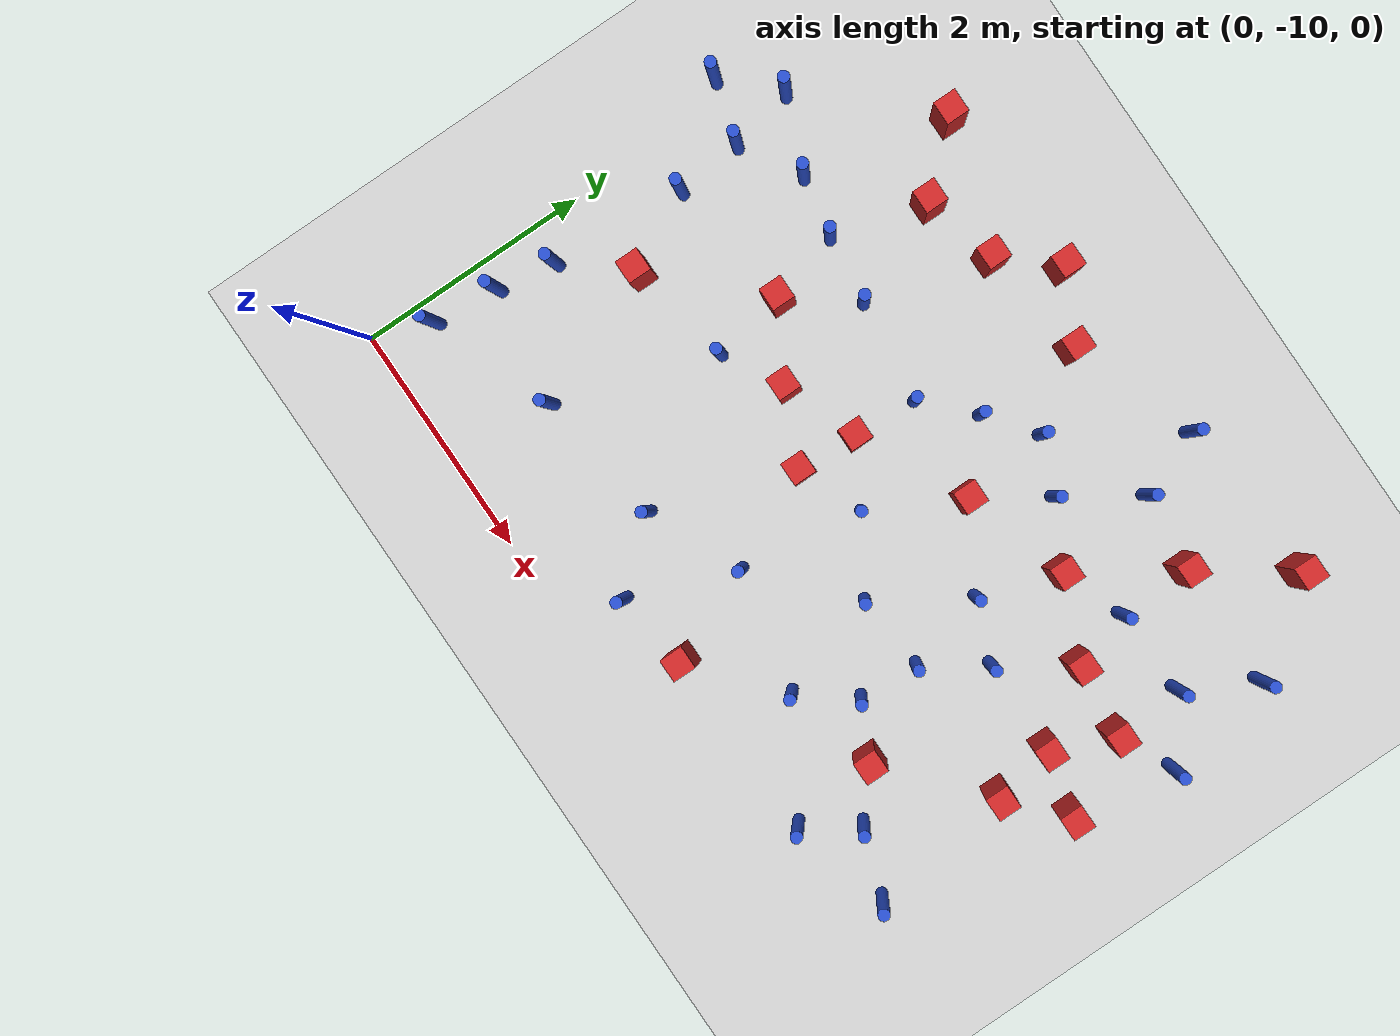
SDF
<sdf version="1.6">
 <world name="default">
  <model name="ground_plane">
   <static>1</static>
   <link name="link">
    <collision name="collision">
     <geometry><plane><normal>0 0 1</normal><size>100 100</size></plane></geometry>
     <surface><friction><ode><mu>100</mu><mu2>50</mu2></ode></friction></surface>
    </collision>
    <visual name="visual">
     <cast_shadows>0</cast_shadows>
     <geometry><plane><normal>0 0 1</normal><size>100 100</size></plane></geometry>
     <material>
      <ambient>1.0 1.0 1.0 1.0</ambient>
      <diffuse>0.8 0.8 0.8 1.0</diffuse>
      <specular>0.01 0.01 0.01 1.000000</specular>
     </material>
    </visual>
   </link>
  </model>
  <model name="square_post_obstacle1">
   <static>true</static>
   <pose>5.8524350811 -7.88041498456 1.91545236811e-07 -7.35059704564e-06 1.12565212e-07 2.39332434364e-05</pose>
   <link name="link">
    <pose>0 0 0.25 0 -0 0</pose>
    <inertial>
     <mass>100</mass>
     <inertia>
      <ixx>0.166667</ixx>
      <ixy>0</ixy>
      <ixz>0</ixz>
      <iyy>0.166667</iyy>
      <iyz>0</iyz>
      <izz>0.166667</izz>
     </inertia>
    </inertial>
    <collision name="collision"><geometry><box><size>.2 .2 .5</size></box></geometry></collision>
    <visual name="visual">
     <geometry><box><size>.2 .2 .5</size></box></geometry>
     <material>
      <script><name>Gazebo/Red</name><uri>file://media/materials/scripts/gazebo.material</uri></script>
     </material>
    </visual>
   </link>
  </model>
  <model name="square_post_obstacle3">
   <static>true</static>
   <pose>1.17555070955 -5.18279903522 1.91545236811e-07 -7.35059704564e-06 1.12565212e-07 2.39332434364e-05</pose>
   <link name="link">
    <pose>0 0 0.25 0 -0 0</pose>
    <inertial>
     <mass>100</mass>
     <inertia>
      <ixx>0.166667</ixx>
      <ixy>0</ixy>
      <ixz>0</ixz>
      <iyy>0.166667</iyy>
      <iyz>0</iyz>
      <izz>0.166667</izz>
     </inertia>
    </inertial>
    <collision name="collision"><geometry><box><size>.2 .2 .5</size></box></geometry></collision>
    <visual name="visual">
     <geometry><box><size>.2 .2 .5</size></box></geometry>
     <material>
      <script><name>Gazebo/Red</name><uri>file://media/materials/scripts/gazebo.material</uri></script>
     </material>
    </visual>
   </link>
  </model>
  <model name="square_post_obstacle5">
   <static>true</static>
   <pose>6.30125212651 -7.48989222779 1.91545236811e-07 -7.35059704564e-06 1.12565212e-07 2.39332434364e-05</pose>
   <link name="link">
    <pose>0 0 0.25 0 -0 0</pose>
    <inertial>
     <mass>100</mass>
     <inertia>
      <ixx>0.166667</ixx>
      <ixy>0</ixy>
      <ixz>0</ixz>
      <iyy>0.166667</iyy>
      <iyz>0</iyz>
      <izz>0.166667</izz>
     </inertia>
    </inertial>
    <collision name="collision"><geometry><box><size>.2 .2 .5</size></box></geometry></collision>
    <visual name="visual">
     <geometry><box><size>.2 .2 .5</size></box></geometry>
     <material>
      <script><name>Gazebo/Red</name><uri>file://media/materials/scripts/gazebo.material</uri></script>
     </material>
    </visual>
   </link>
  </model>
  <model name="square_post_obstacle7">
   <static>true</static>
   <pose>2.81523320813 -7.72987050047 1.91545236811e-07 -7.35059704564e-06 1.12565212e-07 2.39332434364e-05</pose>
   <link name="link">
    <pose>0 0 0.25 0 -0 0</pose>
    <inertial>
     <mass>100</mass>
     <inertia>
      <ixx>0.166667</ixx>
      <ixy>0</ixy>
      <ixz>0</ixz>
      <iyy>0.166667</iyy>
      <iyz>0</iyz>
      <izz>0.166667</izz>
     </inertia>
    </inertial>
    <collision name="collision"><geometry><box><size>.2 .2 .5</size></box></geometry></collision>
    <visual name="visual">
     <geometry><box><size>.2 .2 .5</size></box></geometry>
     <material>
      <script><name>Gazebo/Red</name><uri>file://media/materials/scripts/gazebo.material</uri></script>
     </material>
    </visual>
   </link>
  </model>
  <model name="pole_obstacle17">
   <static>true</static>
   <pose>5.14895536789 -9.33212256707 7.38925637345e-09 -8.471706928e-08 1.24976765081e-08 -1.74513093015e-07</pose>
   <link name="link">
    <pose>0 0 0.3 0 -0 0</pose>
    <inertial>
     <mass>1</mass>
     <inertia><ixx>0.145833</ixx><ixy>0</ixy><ixz>0</ixz><iyy>0.145833</iyy><iyz>0</iyz><izz>0.125</izz></inertia>
    </inertial>
    <collision name="collision">
     <geometry><cylinder><radius>0.05</radius><length>.6</length></cylinder></geometry>
    </collision>
    <visual name="visual">
     <geometry><cylinder><radius>0.05</radius><length>.6</length></cylinder></geometry>
     <material>
      <script><name>Gazebo/Blue</name><uri>file://media/materials/scripts/gazebo.material</uri></script>
     </material>
    </visual>
   </link>
  </model>
  <model name="pole_obstacle26">
   <static>true</static>
   <pose>3.67127067409 -5.98958336278 7.38925637345e-09 -8.47170692798e-08 1.24976765033e-08 -1.74513093019e-07</pose>
   <link name="link">
    <pose>0 0 0.3 0 -0 0</pose>
    <inertial>
     <mass>1</mass>
     <inertia><ixx>0.145833</ixx><ixy>0</ixy><ixz>0</ixz><iyy>0.145833</iyy><iyz>0</iyz><izz>0.125</izz></inertia>
    </inertial>
    <collision name="collision">
     <geometry><cylinder><radius>0.05</radius><length>.6</length></cylinder></geometry>
    </collision>
    <visual name="visual">
     <geometry><cylinder><radius>0.05</radius><length>.6</length></cylinder></geometry>
     <material>
      <script><name>Gazebo/Blue</name><uri>file://media/materials/scripts/gazebo.material</uri></script>
     </material>
    </visual>
   </link>
  </model>
  <model name="pole_obstacle27">
   <static>true</static>
   <pose>0.218281617899 -9.46970340837 7.38925637345e-09 -8.47170692797e-08 1.24976764785e-08 -1.74513093032e-07</pose>
   <link name="link">
    <pose>0 0 0.3 0 -0 0</pose>
    <inertial>
     <mass>1</mass>
     <inertia><ixx>0.145833</ixx><ixy>0</ixy><ixz>0</ixz><iyy>0.145833</iyy><iyz>0</iyz><izz>0.125</izz></inertia>
    </inertial>
    <collision name="collision">
     <geometry><cylinder><radius>0.05</radius><length>.6</length></cylinder></geometry>
    </collision>
    <visual name="visual">
     <geometry><cylinder><radius>0.05</radius><length>.6</length></cylinder></geometry>
     <material>
      <script><name>Gazebo/Blue</name><uri>file://media/materials/scripts/gazebo.material</uri></script>
     </material>
    </visual>
   </link>
  </model>
  <model name="pole_obstacle32">
   <static>true</static>
   <pose>0.370580457258 -8.4109793026 7.38925637345e-09 -8.47170692796e-08 1.24976764724e-08 -1.74513093036e-07</pose>
   <link name="link">
    <pose>0 0 0.3 0 -0 0</pose>
    <inertial>
     <mass>1</mass>
     <inertia><ixx>0.145833</ixx><ixy>0</ixy><ixz>0</ixz><iyy>0.145833</iyy><iyz>0</iyz><izz>0.125</izz></inertia>
    </inertial>
    <collision name="collision">
     <geometry><cylinder><radius>0.05</radius><length>.6</length></cylinder></geometry>
    </collision>
    <visual name="visual">
     <geometry><cylinder><radius>0.05</radius><length>.6</length></cylinder></geometry>
     <material>
      <script><name>Gazebo/Blue</name><uri>file://media/materials/scripts/gazebo.material</uri></script>
     </material>
    </visual>
   </link>
  </model>
  <model name="pole_obstacle37">
   <static>true</static>
   <pose>4.25198157795 -8.78195436409 7.38925637345e-09 -8.471706928e-08 1.24976765081e-08 -1.74513093015e-07</pose>
   <link name="link">
    <pose>0 0 0.3 0 -0 0</pose>
    <inertial>
     <mass>1</mass>
     <inertia><ixx>0.145833</ixx><ixy>0</ixy><ixz>0</ixz><iyy>0.145833</iyy><iyz>0</iyz><izz>0.125</izz></inertia>
    </inertial>
    <collision name="collision">
     <geometry><cylinder><radius>0.05</radius><length>.6</length></cylinder></geometry>
    </collision>
    <visual name="visual">
     <geometry><cylinder><radius>0.05</radius><length>.6</length></cylinder></geometry>
     <material>
      <script><name>Gazebo/Blue</name><uri>file://media/materials/scripts/gazebo.material</uri></script>
     </material>
    </visual>
   </link>
  </model>
  <model name="pole_obstacle38">
   <static>true</static>
   <pose>2.00989700809 -6.5613850864 7.38925637345e-09 -8.47170692799e-08 1.24976765014e-08 -1.7451309302e-07</pose>
   <link name="link">
    <pose>0 0 0.3 0 -0 0</pose>
    <inertial>
     <mass>1</mass>
     <inertia><ixx>0.145833</ixx><ixy>0</ixy><ixz>0</ixz><iyy>0.145833</iyy><iyz>0</iyz><izz>0.125</izz></inertia>
    </inertial>
    <collision name="collision">
     <geometry><cylinder><radius>0.05</radius><length>.6</length></cylinder></geometry>
    </collision>
    <visual name="visual">
     <geometry><cylinder><radius>0.05</radius><length>.6</length></cylinder></geometry>
     <material>
      <script><name>Gazebo/Blue</name><uri>file://media/materials/scripts/gazebo.material</uri></script>
     </material>
    </visual>
   </link>
  </model>
  <model name="pole_obstacle40">
   <static>true</static>
   <pose>5.43878654084 -8.90056300066 7.38925637345e-09 -8.471706928e-08 1.24976765081e-08 -1.74513093015e-07</pose>
   <link name="link">
    <pose>0 0 0.3 0 -0 0</pose>
    <inertial>
     <mass>1</mass>
     <inertia><ixx>0.145833</ixx><ixy>0</ixy><ixz>0</ixz><iyy>0.145833</iyy><iyz>0</iyz><izz>0.125</izz></inertia>
    </inertial>
    <collision name="collision">
     <geometry><cylinder><radius>0.05</radius><length>.6</length></cylinder></geometry>
    </collision>
    <visual name="visual">
     <geometry><cylinder><radius>0.05</radius><length>.6</length></cylinder></geometry>
     <material>
      <script><name>Gazebo/Blue</name><uri>file://media/materials/scripts/gazebo.material</uri></script>
     </material>
    </visual>
   </link>
  </model>
  <model name="pole_obstacle41">
   <static>true</static>
   <pose>2.88680595156 -9.46219726965 7.38925637345e-09 -8.47170692793e-08 1.24976764408e-08 -1.74513093041e-07</pose>
   <link name="link">
    <pose>0 0 0.3 0 -0 0</pose>
    <inertial>
     <mass>1</mass>
     <inertia><ixx>0.145833</ixx><ixy>0</ixy><ixz>0</ixz><iyy>0.145833</iyy><iyz>0</iyz><izz>0.125</izz></inertia>
    </inertial>
    <collision name="collision">
     <geometry><cylinder><radius>0.05</radius><length>.6</length></cylinder></geometry>
    </collision>
    <visual name="visual">
     <geometry><cylinder><radius>0.05</radius><length>.6</length></cylinder></geometry>
     <material>
      <script><name>Gazebo/Blue</name><uri>file://media/materials/scripts/gazebo.material</uri></script>
     </material>
    </visual>
   </link>
  </model>
  <model name="pole_obstacle47">
   <static>true</static>
   <pose>4.62525755946 -7.83946265827 7.38925637345e-09 -8.47170692796e-08 1.24976764786e-08 -1.74513093032e-07</pose>
   <link name="link">
    <pose>0 0 0.3 0 -0 0</pose>
    <inertial>
     <mass>1</mass>
     <inertia><ixx>0.145833</ixx><ixy>0</ixy><ixz>0</ixz><iyy>0.145833</iyy><iyz>0</iyz><izz>0.125</izz></inertia>
    </inertial>
    <collision name="collision">
     <geometry><cylinder><radius>0.05</radius><length>.6</length></cylinder></geometry>
    </collision>
    <visual name="visual">
     <geometry><cylinder><radius>0.05</radius><length>.6</length></cylinder></geometry>
     <material>
      <script><name>Gazebo/Blue</name><uri>file://media/materials/scripts/gazebo.material</uri></script>
     </material>
    </visual>
   </link>
  </model>
  <model name="pole_obstacle60">
   <static>true</static>
   <pose>0.460055146686 -7.26032263534 7.38925637345e-09 -8.471706928e-08 1.24976765095e-08 -1.74513093014e-07</pose>
   <link name="link">
    <pose>0 0 0.3 0 -0 0</pose>
    <inertial>
     <mass>1</mass>
     <inertia><ixx>0.145833</ixx><ixy>0</ixy><ixz>0</ixz><iyy>0.145833</iyy><iyz>0</iyz><izz>0.125</izz></inertia>
    </inertial>
    <collision name="collision">
     <geometry><cylinder><radius>0.05</radius><length>.6</length></cylinder></geometry>
    </collision>
    <visual name="visual">
     <geometry><cylinder><radius>0.05</radius><length>.6</length></cylinder></geometry>
     <material>
      <script><name>Gazebo/Blue</name><uri>file://media/materials/scripts/gazebo.material</uri></script>
     </material>
    </visual>
   </link>
  </model>
  <model name="square_post_obstacle62">
   <static>true</static>
   <pose>1.65205220888 -5.70170463473 1.91545236811e-07 -7.35059704564e-06 1.12565212e-07 2.39332434364e-05</pose>
   <link name="link">
    <pose>0 0 0.25 0 -0 0</pose>
    <inertial>
     <mass>100</mass>
     <inertia>
      <ixx>0.166667</ixx>
      <ixy>0</ixy>
      <ixz>0</ixz>
      <iyy>0.166667</iyy>
      <iyz>0</iyz>
      <izz>0.166667</izz>
     </inertia>
    </inertial>
    <collision name="collision"><geometry><box><size>.2 .2 .5</size></box></geometry></collision>
    <visual name="visual">
     <geometry><box><size>.2 .2 .5</size></box></geometry>
     <material>
      <script><name>Gazebo/Red</name><uri>file://media/materials/scripts/gazebo.material</uri></script>
     </material>
    </visual>
   </link>
  </model>
  <model name="pole_obstacle61">
   <static>true</static>
   <pose>3.36711094771 -7.5144441604 7.38925637345e-09 -8.47170692798e-08 1.24976765033e-08 -1.74513093019e-07</pose>
   <link name="link">
    <pose>0 0 0.3 0 -0 0</pose>
    <inertial>
     <mass>1</mass>
     <inertia><ixx>0.145833</ixx><ixy>0</ixy><ixz>0</ixz><iyy>0.145833</iyy><iyz>0</iyz><izz>0.125</izz></inertia>
    </inertial>
    <collision name="collision">
     <geometry><cylinder><radius>0.05</radius><length>.6</length></cylinder></geometry>
    </collision>
    <visual name="visual">
     <geometry><cylinder><radius>0.05</radius><length>.6</length></cylinder></geometry>
     <material>
      <script><name>Gazebo/Blue</name><uri>file://media/materials/scripts/gazebo.material</uri></script>
     </material>
    </visual>
   </link>
  </model>
  <model name="pole_obstacle62">
   <static>true</static>
   <pose>5.94779780442 -6.24223520678 7.38925637345e-09 -8.47170692796e-08 1.24976764786e-08 -1.74513093032e-07</pose>
   <link name="link">
    <pose>0 0 0.3 0 -0 0</pose>
    <inertial>
     <mass>1</mass>
     <inertia><ixx>0.145833</ixx><ixy>0</ixy><ixz>0</ixz><iyy>0.145833</iyy><iyz>0</iyz><izz>0.125</izz></inertia>
    </inertial>
    <collision name="collision">
     <geometry><cylinder><radius>0.05</radius><length>.6</length></cylinder></geometry>
    </collision>
    <visual name="visual">
     <geometry><cylinder><radius>0.05</radius><length>.6</length></cylinder></geometry>
     <material>
      <script><name>Gazebo/Blue</name><uri>file://media/materials/scripts/gazebo.material</uri></script>
     </material>
    </visual>
   </link>
  </model>
  <model name="pole_obstacle66">
   <static>true</static>
   <pose>6.2660378032 -5.65372171169 7.38925637345e-09 -8.47170692796e-08 1.24976764786e-08 -1.74513093032e-07</pose>
   <link name="link">
    <pose>0 0 0.3 0 -0 0</pose>
    <inertial>
     <mass>1</mass>
     <inertia><ixx>0.145833</ixx><ixy>0</ixy><ixz>0</ixz><iyy>0.145833</iyy><iyz>0</iyz><izz>0.125</izz></inertia>
    </inertial>
    <collision name="collision">
     <geometry><cylinder><radius>0.05</radius><length>.6</length></cylinder></geometry>
    </collision>
    <visual name="visual">
     <geometry><cylinder><radius>0.05</radius><length>.6</length></cylinder></geometry>
     <material>
      <script><name>Gazebo/Blue</name><uri>file://media/materials/scripts/gazebo.material</uri></script>
     </material>
    </visual>
   </link>
  </model>
  <model name="square_post_obstacle73">
   <static>true</static>
   <pose>2.66612881722 -5.10111255644 1.91545236811e-07 -7.35059704564e-06 1.12565212e-07 2.39332434364e-05</pose>
   <link name="link">
    <pose>0 0 0.25 0 -0 0</pose>
    <inertial>
     <mass>100</mass>
     <inertia>
      <ixx>0.166667</ixx>
      <ixy>0</ixy>
      <ixz>0</ixz>
      <iyy>0.166667</iyy>
      <iyz>0</iyz>
      <izz>0.166667</izz>
     </inertia>
    </inertial>
    <collision name="collision"><geometry><box><size>.2 .2 .5</size></box></geometry></collision>
    <visual name="visual">
     <geometry><box><size>.2 .2 .5</size></box></geometry>
     <material>
      <script><name>Gazebo/Red</name><uri>file://media/materials/scripts/gazebo.material</uri></script>
     </material>
    </visual>
   </link>
  </model>
  <model name="square_post_obstacle75">
   <static>true</static>
   <pose>3.24001456475 -5.39599290933 1.91545236811e-07 -7.35059704564e-06 1.12565212e-07 2.39332434364e-05</pose>
   <link name="link">
    <pose>0 0 0.25 0 -0 0</pose>
    <inertial>
     <mass>100</mass>
     <inertia>
      <ixx>0.166667</ixx>
      <ixy>0</ixy>
      <ixz>0</ixz>
      <iyy>0.166667</iyy>
      <iyz>0</iyz>
      <izz>0.166667</izz>
     </inertia>
    </inertial>
    <collision name="collision"><geometry><box><size>.2 .2 .5</size></box></geometry></collision>
    <visual name="visual">
     <geometry><box><size>.2 .2 .5</size></box></geometry>
     <material>
      <script><name>Gazebo/Red</name><uri>file://media/materials/scripts/gazebo.material</uri></script>
     </material>
    </visual>
   </link>
  </model>
  <model name="pole_obstacle70">
   <static>true</static>
   <pose>3.97271697191 -7.89106494173 7.38925637345e-09 -8.47170692798e-08 1.24976764915e-08 -1.74513093026e-07</pose>
   <link name="link">
    <pose>0 0 0.3 0 -0 0</pose>
    <inertial>
     <mass>1</mass>
     <inertia><ixx>0.145833</ixx><ixy>0</ixy><ixz>0</ixz><iyy>0.145833</iyy><iyz>0</iyz><izz>0.125</izz></inertia>
    </inertial>
    <collision name="collision">
     <geometry><cylinder><radius>0.05</radius><length>.6</length></cylinder></geometry>
    </collision>
    <visual name="visual">
     <geometry><cylinder><radius>0.05</radius><length>.6</length></cylinder></geometry>
     <material>
      <script><name>Gazebo/Blue</name><uri>file://media/materials/scripts/gazebo.material</uri></script>
     </material>
    </visual>
   </link>
  </model>
  <model name="pole_obstacle71">
   <static>true</static>
   <pose>0.909518761275 -6.3886095551 7.38925637345e-09 -8.471706928e-08 1.24976765086e-08 -1.74513093015e-07</pose>
   <link name="link">
    <pose>0 0 0.3 0 -0 0</pose>
    <inertial>
     <mass>1</mass>
     <inertia><ixx>0.145833</ixx><ixy>0</ixy><ixz>0</ixz><iyy>0.145833</iyy><iyz>0</iyz><izz>0.125</izz></inertia>
    </inertial>
    <collision name="collision">
     <geometry><cylinder><radius>0.05</radius><length>.6</length></cylinder></geometry>
    </collision>
    <visual name="visual">
     <geometry><cylinder><radius>0.05</radius><length>.6</length></cylinder></geometry>
     <material>
      <script><name>Gazebo/Blue</name><uri>file://media/materials/scripts/gazebo.material</uri></script>
     </material>
    </visual>
   </link>
  </model>
  <model name="pole_obstacle77">
   <static>true</static>
   <pose>4.13741881495 -6.18328651159 7.38925637345e-09 -8.47170692796e-08 1.24976764786e-08 -1.74513093032e-07</pose>
   <link name="link">
    <pose>0 0 0.3 0 -0 0</pose>
    <inertial>
     <mass>1</mass>
     <inertia><ixx>0.145833</ixx><ixy>0</ixy><ixz>0</ixz><iyy>0.145833</iyy><iyz>0</iyz><izz>0.125</izz></inertia>
    </inertial>
    <collision name="collision">
     <geometry><cylinder><radius>0.05</radius><length>.6</length></cylinder></geometry>
    </collision>
    <visual name="visual">
     <geometry><cylinder><radius>0.05</radius><length>.6</length></cylinder></geometry>
     <material>
      <script><name>Gazebo/Blue</name><uri>file://media/materials/scripts/gazebo.material</uri></script>
     </material>
    </visual>
   </link>
  </model>
  <model name="square_post_obstacle79">
   <static>true</static>
   <pose>0.804886437363 -7.90606189338 1.91545236811e-07 -7.35059704564e-06 1.12565212e-07 2.39332434364e-05</pose>
   <link name="link">
    <pose>0 0 0.25 0 -0 0</pose>
    <inertial>
     <mass>100</mass>
     <inertia>
      <ixx>0.166667</ixx>
      <ixy>0</ixy>
      <ixz>0</ixz>
      <iyy>0.166667</iyy>
      <iyz>0</iyz>
      <izz>0.166667</izz>
     </inertia>
    </inertial>
    <collision name="collision"><geometry><box><size>.2 .2 .5</size></box></geometry></collision>
    <visual name="visual">
     <geometry><box><size>.2 .2 .5</size></box></geometry>
     <material>
      <script><name>Gazebo/Red</name><uri>file://media/materials/scripts/gazebo.material</uri></script>
     </material>
    </visual>
   </link>
  </model>
  <model name="pole_obstacle83">
   <static>true</static>
   <pose>0.282120769581 -6.13484240213 7.38925637345e-09 -8.47170692799e-08 1.24976765101e-08 -1.74513093014e-07</pose>
   <link name="link">
    <pose>0 0 0.3 0 -0 0</pose>
    <inertial>
     <mass>1</mass>
     <inertia><ixx>0.145833</ixx><ixy>0</ixy><ixz>0</ixz><iyy>0.145833</iyy><iyz>0</iyz><izz>0.125</izz></inertia>
    </inertial>
    <collision name="collision">
     <geometry><cylinder><radius>0.05</radius><length>.6</length></cylinder></geometry>
    </collision>
    <visual name="visual">
     <geometry><cylinder><radius>0.05</radius><length>.6</length></cylinder></geometry>
     <material>
      <script><name>Gazebo/Blue</name><uri>file://media/materials/scripts/gazebo.material</uri></script>
     </material>
    </visual>
   </link>
  </model>
  <model name="pole_obstacle89">
   <static>true</static>
   <pose>3.21432584726 -8.55921578674 7.38925637345e-09 -8.47170692793e-08 1.24976764408e-08 -1.74513093041e-07</pose>
   <link name="link">
    <pose>0 0 0.3 0 -0 0</pose>
    <inertial>
     <mass>1</mass>
     <inertia><ixx>0.145833</ixx><ixy>0</ixy><ixz>0</ixz><iyy>0.145833</iyy><iyz>0</iyz><izz>0.125</izz></inertia>
    </inertial>
    <collision name="collision">
     <geometry><cylinder><radius>0.05</radius><length>.6</length></cylinder></geometry>
    </collision>
    <visual name="visual">
     <geometry><cylinder><radius>0.05</radius><length>.6</length></cylinder></geometry>
     <material>
      <script><name>Gazebo/Blue</name><uri>file://media/materials/scripts/gazebo.material</uri></script>
     </material>
    </visual>
   </link>
  </model>
  <model name="pole_obstacle95">
   <static>true</static>
   <pose>0.405110132146 -6.68753545809 7.38925637345e-09 -8.471706928e-08 1.24976765079e-08 -1.74513093015e-07</pose>
   <link name="link">
    <pose>0 0 0.3 0 -0 0</pose>
    <inertial>
     <mass>1</mass>
     <inertia><ixx>0.145833</ixx><ixy>0</ixy><ixz>0</ixz><iyy>0.145833</iyy><iyz>0</iyz><izz>0.125</izz></inertia>
    </inertial>
    <collision name="collision">
     <geometry><cylinder><radius>0.05</radius><length>.6</length></cylinder></geometry>
    </collision>
    <visual name="visual">
     <geometry><cylinder><radius>0.05</radius><length>.6</length></cylinder></geometry>
     <material>
      <script><name>Gazebo/Blue</name><uri>file://media/materials/scripts/gazebo.material</uri></script>
     </material>
    </visual>
   </link>
  </model>
  <model name="pole_obstacle96">
   <static>true</static>
   <pose>6.0168835938 -9.11356275432 7.38925637345e-09 -8.471706928e-08 1.24976765081e-08 -1.74513093015e-07</pose>
   <link name="link">
    <pose>0 0 0.3 0 -0 0</pose>
    <inertial>
     <mass>1</mass>
     <inertia><ixx>0.145833</ixx><ixy>0</ixy><ixz>0</ixz><iyy>0.145833</iyy><iyz>0</iyz><izz>0.125</izz></inertia>
    </inertial>
    <collision name="collision">
     <geometry><cylinder><radius>0.05</radius><length>.6</length></cylinder></geometry>
    </collision>
    <visual name="visual">
     <geometry><cylinder><radius>0.05</radius><length>.6</length></cylinder></geometry>
     <material>
      <script><name>Gazebo/Blue</name><uri>file://media/materials/scripts/gazebo.material</uri></script>
     </material>
    </visual>
   </link>
  </model>
  <model name="pole_obstacle98">
   <static>true</static>
   <pose>6.45386179996 -6.62031490919 7.38925637345e-09 -8.47170692796e-08 1.24976764786e-08 -1.74513093032e-07</pose>
   <link name="link">
    <pose>0 0 0.3 0 -0 0</pose>
    <inertial>
     <mass>1</mass>
     <inertia><ixx>0.145833</ixx><ixy>0</ixy><ixz>0</ixz><iyy>0.145833</iyy><iyz>0</iyz><izz>0.125</izz></inertia>
    </inertial>
    <collision name="collision">
     <geometry><cylinder><radius>0.05</radius><length>.6</length></cylinder></geometry>
    </collision>
    <visual name="visual">
     <geometry><cylinder><radius>0.05</radius><length>.6</length></cylinder></geometry>
     <material>
      <script><name>Gazebo/Blue</name><uri>file://media/materials/scripts/gazebo.material</uri></script>
     </material>
    </visual>
   </link>
  </model>
  <model name="square_post_obstacle89">
   <static>true</static>
   <pose>2.8452078195 -7.21534029138 1.91545236811e-07 -7.35059704564e-06 1.12565212e-07 2.39332434364e-05</pose>
   <link name="link">
    <pose>0 0 0.25 0 -0 0</pose>
    <inertial>
     <mass>100</mass>
     <inertia>
      <ixx>0.166667</ixx>
      <ixy>0</ixy>
      <ixz>0</ixz>
      <iyy>0.166667</iyy>
      <iyz>0</iyz>
      <izz>0.166667</izz>
     </inertia>
    </inertial>
    <collision name="collision"><geometry><box><size>.2 .2 .5</size></box></geometry></collision>
    <visual name="visual">
     <geometry><box><size>.2 .2 .5</size></box></geometry>
     <material>
      <script><name>Gazebo/Red</name><uri>file://media/materials/scripts/gazebo.material</uri></script>
     </material>
    </visual>
   </link>
  </model>
  <model name="pole_obstacle109">
   <static>true</static>
   <pose>4.54108719141 -5.56778793481 7.38925637345e-09 -8.47170692796e-08 1.24976764786e-08 -1.74513093032e-07</pose>
   <link name="link">
    <pose>0 0 0.3 0 -0 0</pose>
    <inertial>
     <mass>1</mass>
     <inertia><ixx>0.145833</ixx><ixy>0</ixy><ixz>0</ixz><iyy>0.145833</iyy><iyz>0</iyz><izz>0.125</izz></inertia>
    </inertial>
    <collision name="collision">
     <geometry><cylinder><radius>0.05</radius><length>.6</length></cylinder></geometry>
    </collision>
    <visual name="visual">
     <geometry><cylinder><radius>0.05</radius><length>.6</length></cylinder></geometry>
     <material>
      <script><name>Gazebo/Blue</name><uri>file://media/materials/scripts/gazebo.material</uri></script>
     </material>
    </visual>
   </link>
  </model>
  <model name="square_post_obstacle101">
   <static>true</static>
   <pose>5.19624560357 -5.64636741555 1.91545236811e-07 -7.35059704564e-06 1.12565212e-07 2.39332434364e-05</pose>
   <link name="link">
    <pose>0 0 0.25 0 -0 0</pose>
    <inertial>
     <mass>100</mass>
     <inertia>
      <ixx>0.166667</ixx>
      <ixy>0</ixy>
      <ixz>0</ixz>
      <iyy>0.166667</iyy>
      <iyz>0</iyz>
      <izz>0.166667</izz>
     </inertia>
    </inertial>
    <collision name="collision"><geometry><box><size>.2 .2 .5</size></box></geometry></collision>
    <visual name="visual">
     <geometry><box><size>.2 .2 .5</size></box></geometry>
     <material>
      <script><name>Gazebo/Red</name><uri>file://media/materials/scripts/gazebo.material</uri></script>
     </material>
    </visual>
   </link>
  </model>
  <model name="square_post_obstacle112">
   <static>true</static>
   <pose>3.75536360353 -6.75383638732 1.91545236811e-07 -7.35059704564e-06 1.12565212e-07 2.39332434364e-05</pose>
   <link name="link">
    <pose>0 0 0.25 0 -0 0</pose>
    <inertial>
     <mass>100</mass>
     <inertia>
      <ixx>0.166667</ixx>
      <ixy>0</ixy>
      <ixz>0</ixz>
      <iyy>0.166667</iyy>
      <iyz>0</iyz>
      <izz>0.166667</izz>
     </inertia>
    </inertial>
    <collision name="collision"><geometry><box><size>.2 .2 .5</size></box></geometry></collision>
    <visual name="visual">
     <geometry><box><size>.2 .2 .5</size></box></geometry>
     <material>
      <script><name>Gazebo/Red</name><uri>file://media/materials/scripts/gazebo.material</uri></script>
     </material>
    </visual>
   </link>
  </model>
  <model name="pole_obstacle130">
   <static>true</static>
   <pose>1.27187517223 -9.07288518427 7.38925637345e-09 -8.47170692798e-08 1.24976764881e-08 -1.74513093027e-07</pose>
   <link name="link">
    <pose>0 0 0.3 0 -0 0</pose>
    <inertial>
     <mass>1</mass>
     <inertia><ixx>0.145833</ixx><ixy>0</ixy><ixz>0</ixz><iyy>0.145833</iyy><iyz>0</iyz><izz>0.125</izz></inertia>
    </inertial>
    <collision name="collision">
     <geometry><cylinder><radius>0.05</radius><length>.6</length></cylinder></geometry>
    </collision>
    <visual name="visual">
     <geometry><cylinder><radius>0.05</radius><length>.6</length></cylinder></geometry>
     <material>
      <script><name>Gazebo/Blue</name><uri>file://media/materials/scripts/gazebo.material</uri></script>
     </material>
    </visual>
   </link>
  </model>
  <model name="square_post_obstacle117">
   <static>true</static>
   <pose>2.20672416516 -7.4568853936 1.91545236811e-07 -7.35059704564e-06 1.12565212e-07 2.39332434364e-05</pose>
   <link name="link">
    <pose>0 0 0.25 0 -0 0</pose>
    <inertial>
     <mass>100</mass>
     <inertia>
      <ixx>0.166667</ixx>
      <ixy>0</ixy>
      <ixz>0</ixz>
      <iyy>0.166667</iyy>
      <iyz>0</iyz>
      <izz>0.166667</izz>
     </inertia>
    </inertial>
    <collision name="collision"><geometry><box><size>.2 .2 .5</size></box></geometry></collision>
    <visual name="visual">
     <geometry><box><size>.2 .2 .5</size></box></geometry>
     <material>
      <script><name>Gazebo/Red</name><uri>file://media/materials/scripts/gazebo.material</uri></script>
     </material>
    </visual>
   </link>
  </model>
  <model name="square_post_obstacle122">
   <static>true</static>
   <pose>5.72048666476 -4.90826845732 1.91545236811e-07 -7.35059704564e-06 1.12565212e-07 2.39332434364e-05</pose>
   <link name="link">
    <pose>0 0 0.25 0 -0 0</pose>
    <inertial>
     <mass>100</mass>
     <inertia>
      <ixx>0.166667</ixx>
      <ixy>0</ixy>
      <ixz>0</ixz>
      <iyy>0.166667</iyy>
      <iyz>0</iyz>
      <izz>0.166667</izz>
     </inertia>
    </inertial>
    <collision name="collision"><geometry><box><size>.2 .2 .5</size></box></geometry></collision>
    <visual name="visual">
     <geometry><box><size>.2 .2 .5</size></box></geometry>
     <material>
      <script><name>Gazebo/Red</name><uri>file://media/materials/scripts/gazebo.material</uri></script>
     </material>
    </visual>
   </link>
  </model>
  <model name="square_post_obstacle126">
   <static>true</static>
   <pose>4.66367284686 -6.46945786732 1.91545236811e-07 -7.35059704564e-06 1.12565212e-07 2.39332434364e-05</pose>
   <link name="link">
    <pose>0 0 0.25 0 -0 0</pose>
    <inertial>
     <mass>100</mass>
     <inertia>
      <ixx>0.166667</ixx>
      <ixy>0</ixy>
      <ixz>0</ixz>
      <iyy>0.166667</iyy>
      <iyz>0</iyz>
      <izz>0.166667</izz>
     </inertia>
    </inertial>
    <collision name="collision"><geometry><box><size>.2 .2 .5</size></box></geometry></collision>
    <visual name="visual">
     <geometry><box><size>.2 .2 .5</size></box></geometry>
     <material>
      <script><name>Gazebo/Red</name><uri>file://media/materials/scripts/gazebo.material</uri></script>
     </material>
    </visual>
   </link>
  </model>
  <model name="pole_obstacle161">
   <static>true</static>
   <pose>4.3205931974 -4.99926315197 7.38925637345e-09 -8.47170692796e-08 1.24976764786e-08 -1.74513093032e-07</pose>
   <link name="link">
    <pose>0 0 0.3 0 -0 0</pose>
    <inertial>
     <mass>1</mass>
     <inertia><ixx>0.145833</ixx><ixy>0</ixy><ixz>0</ixz><iyy>0.145833</iyy><iyz>0</iyz><izz>0.125</izz></inertia>
    </inertial>
    <collision name="collision">
     <geometry><cylinder><radius>0.05</radius><length>.6</length></cylinder></geometry>
    </collision>
    <visual name="visual">
     <geometry><cylinder><radius>0.05</radius><length>.6</length></cylinder></geometry>
     <material>
      <script><name>Gazebo/Blue</name><uri>file://media/materials/scripts/gazebo.material</uri></script>
     </material>
    </visual>
   </link>
  </model>
  <model name="pole_obstacle164">
   <static>true</static>
   <pose>1.42935370931 -6.48853267664 7.38925637345e-09 -8.47170692799e-08 1.24976765033e-08 -1.74513093018e-07</pose>
   <link name="link">
    <pose>0 0 0.3 0 -0 0</pose>
    <inertial>
     <mass>1</mass>
     <inertia><ixx>0.145833</ixx><ixy>0</ixy><ixz>0</ixz><iyy>0.145833</iyy><iyz>0</iyz><izz>0.125</izz></inertia>
    </inertial>
    <collision name="collision">
     <geometry><cylinder><radius>0.05</radius><length>.6</length></cylinder></geometry>
    </collision>
    <visual name="visual">
     <geometry><cylinder><radius>0.05</radius><length>.6</length></cylinder></geometry>
     <material>
      <script><name>Gazebo/Blue</name><uri>file://media/materials/scripts/gazebo.material</uri></script>
     </material>
    </visual>
   </link>
  </model>
  <model name="pole_obstacle167">
   <static>true</static>
   <pose>2.42167713961 -8.91231590278 7.38925637345e-09 -8.47170692793e-08 1.24976764408e-08 -1.74513093041e-07</pose>
   <link name="link">
    <pose>0 0 0.3 0 -0 0</pose>
    <inertial>
     <mass>1</mass>
     <inertia><ixx>0.145833</ixx><ixy>0</ixy><ixz>0</ixz><iyy>0.145833</iyy><iyz>0</iyz><izz>0.125</izz></inertia>
    </inertial>
    <collision name="collision">
     <geometry><cylinder><radius>0.05</radius><length>.6</length></cylinder></geometry>
    </collision>
    <visual name="visual">
     <geometry><cylinder><radius>0.05</radius><length>.6</length></cylinder></geometry>
     <material>
      <script><name>Gazebo/Blue</name><uri>file://media/materials/scripts/gazebo.material</uri></script>
     </material>
    </visual>
   </link>
  </model>
  <model name="pole_obstacle169">
   <static>true</static>
   <pose>3.26965984362 -6.29893591241 7.38925637345e-09 -8.47170692798e-08 1.24976765033e-08 -1.74513093019e-07</pose>
   <link name="link">
    <pose>0 0 0.3 0 -0 0</pose>
    <inertial>
     <mass>1</mass>
     <inertia><ixx>0.145833</ixx><ixy>0</ixy><ixz>0</ixz><iyy>0.145833</iyy><iyz>0</iyz><izz>0.125</izz></inertia>
    </inertial>
    <collision name="collision">
     <geometry><cylinder><radius>0.05</radius><length>.6</length></cylinder></geometry>
    </collision>
    <visual name="visual">
     <geometry><cylinder><radius>0.05</radius><length>.6</length></cylinder></geometry>
     <material>
      <script><name>Gazebo/Blue</name><uri>file://media/materials/scripts/gazebo.material</uri></script>
     </material>
    </visual>
   </link>
  </model>
  <model name="square_post_obstacle171">
   <static>true</static>
   <pose>5.35117023408 -6.76733724169 1.91545236811e-07 -7.35059704564e-06 1.12565212e-07 2.39332434364e-05</pose>
   <link name="link">
    <pose>0 0 0.25 0 -0 0</pose>
    <inertial>
     <mass>100</mass>
     <inertia>
      <ixx>0.166667</ixx>
      <ixy>0</ixy>
      <ixz>0</ixz>
      <iyy>0.166667</iyy>
      <iyz>0</iyz>
      <izz>0.166667</izz>
     </inertia>
    </inertial>
    <collision name="collision"><geometry><box><size>.2 .2 .5</size></box></geometry></collision>
    <visual name="visual">
     <geometry><box><size>.2 .2 .5</size></box></geometry>
     <material>
      <script><name>Gazebo/Red</name><uri>file://media/materials/scripts/gazebo.material</uri></script>
     </material>
    </visual>
   </link>
  </model>
  <model name="pole_obstacle186">
   <static>true</static>
   <pose>-0.128668530449 -6.53406145833 7.38925637345e-09 -8.47170692799e-08 1.24976765043e-08 -1.74513093019e-07</pose>
   <link name="link">
    <pose>0 0 0.3 0 -0 0</pose>
    <inertial>
     <mass>1</mass>
     <inertia><ixx>0.145833</ixx><ixy>0</ixy><ixz>0</ixz><iyy>0.145833</iyy><iyz>0</iyz><izz>0.125</izz></inertia>
    </inertial>
    <collision name="collision">
     <geometry><cylinder><radius>0.05</radius><length>.6</length></cylinder></geometry>
    </collision>
    <visual name="visual">
     <geometry><cylinder><radius>0.05</radius><length>.6</length></cylinder></geometry>
     <material>
      <script><name>Gazebo/Blue</name><uri>file://media/materials/scripts/gazebo.material</uri></script>
     </material>
    </visual>
   </link>
  </model>
  <model name="square_post_obstacle175">
   <static>true</static>
   <pose>3.54540759466 -9.35574024246 1.91545236811e-07 -7.35059704564e-06 1.12565212e-07 2.39332434364e-05</pose>
   <link name="link">
    <pose>0 0 0.25 0 -0 0</pose>
    <inertial>
     <mass>100</mass>
     <inertia>
      <ixx>0.166667</ixx>
      <ixy>0</ixy>
      <ixz>0</ixz>
      <iyy>0.166667</iyy>
      <iyz>0</iyz>
      <izz>0.166667</izz>
     </inertia>
    </inertial>
    <collision name="collision"><geometry><box><size>.2 .2 .5</size></box></geometry></collision>
    <visual name="visual">
     <geometry><box><size>.2 .2 .5</size></box></geometry>
     <material>
      <script><name>Gazebo/Red</name><uri>file://media/materials/scripts/gazebo.material</uri></script>
     </material>
    </visual>
   </link>
  </model>
  <model name="square_post_obstacle181">
   <static>true</static>
   <pose>1.60537371197 -7.10591968944 1.91545236811e-07 -7.35059704564e-06 1.12565212e-07 2.39332434364e-05</pose>
   <link name="link">
    <pose>0 0 0.25 0 -0 0</pose>
    <inertial>
     <mass>100</mass>
     <inertia>
      <ixx>0.166667</ixx>
      <ixy>0</ixy>
      <ixz>0</ixz>
      <iyy>0.166667</iyy>
      <iyz>0</iyz>
      <izz>0.166667</izz>
     </inertia>
    </inertial>
    <collision name="collision"><geometry><box><size>.2 .2 .5</size></box></geometry></collision>
    <visual name="visual">
     <geometry><box><size>.2 .2 .5</size></box></geometry>
     <material>
      <script><name>Gazebo/Red</name><uri>file://media/materials/scripts/gazebo.material</uri></script>
     </material>
    </visual>
   </link>
  </model>
  <model name="square_post_obstacle187">
   <static>true</static>
   <pose>2.28756848284 -5.53989882112 1.91545236811e-07 -7.35059704564e-06 1.12565212e-07 2.39332434364e-05</pose>
   <link name="link">
    <pose>0 0 0.25 0 -0 0</pose>
    <inertial>
     <mass>100</mass>
     <inertia>
      <ixx>0.166667</ixx>
      <ixy>0</ixy>
      <ixz>0</ixz>
      <iyy>0.166667</iyy>
      <iyz>0</iyz>
      <izz>0.166667</izz>
     </inertia>
    </inertial>
    <collision name="collision"><geometry><box><size>.2 .2 .5</size></box></geometry></collision>
    <visual name="visual">
     <geometry><box><size>.2 .2 .5</size></box></geometry>
     <material>
      <script><name>Gazebo/Red</name><uri>file://media/materials/scripts/gazebo.material</uri></script>
     </material>
    </visual>
   </link>
  </model>
  <model name="square_post_obstacle196">
   <static>true</static>
   <pose>5.75465578259 -7.3567123677 1.91545236811e-07 -7.35059704564e-06 1.12565212e-07 2.39332434364e-05</pose>
   <link name="link">
    <pose>0 0 0.25 0 -0 0</pose>
    <inertial>
     <mass>100</mass>
     <inertia>
      <ixx>0.166667</ixx>
      <ixy>0</ixy>
      <ixz>0</ixz>
      <iyy>0.166667</iyy>
      <iyz>0</iyz>
      <izz>0.166667</izz>
     </inertia>
    </inertial>
    <collision name="collision"><geometry><box><size>.2 .2 .5</size></box></geometry></collision>
    <visual name="visual">
     <geometry><box><size>.2 .2 .5</size></box></geometry>
     <material>
      <script><name>Gazebo/Red</name><uri>file://media/materials/scripts/gazebo.material</uri></script>
     </material>
    </visual>
   </link>
  </model>
  <model name="square_post_obstacle197">
   <static>true</static>
   <pose>5.97459571304 -6.83428588112 1.91545236811e-07 -7.35059704564e-06 1.12565212e-07 2.39332434364e-05</pose>
   <link name="link">
    <pose>0 0 0.25 0 -0 0</pose>
    <inertial>
     <mass>100</mass>
     <inertia>
      <ixx>0.166667</ixx>
      <ixy>0</ixy>
      <ixz>0</ixz>
      <iyy>0.166667</iyy>
      <iyz>0</iyz>
      <izz>0.166667</izz>
     </inertia>
    </inertial>
    <collision name="collision"><geometry><box><size>.2 .2 .5</size></box></geometry></collision>
    <visual name="visual">
     <geometry><box><size>.2 .2 .5</size></box></geometry>
     <material>
      <script><name>Gazebo/Red</name><uri>file://media/materials/scripts/gazebo.material</uri></script>
     </material>
    </visual>
   </link>
  </model>
  <model name="square_post_obstacle201">
   <static>true</static>
   <pose>5.04520308895 -8.57084963798 1.91545236811e-07 -7.35059704564e-06 1.12565212e-07 2.39332434364e-05</pose>
   <link name="link">
    <pose>0 0 0.25 0 -0 0</pose>
    <inertial>
     <mass>100</mass>
     <inertia>
      <ixx>0.166667</ixx>
      <ixy>0</ixy>
      <ixz>0</ixz>
      <iyy>0.166667</iyy>
      <iyz>0</iyz>
      <izz>0.166667</izz>
     </inertia>
    </inertial>
    <collision name="collision"><geometry><box><size>.2 .2 .5</size></box></geometry></collision>
    <visual name="visual">
     <geometry><box><size>.2 .2 .5</size></box></geometry>
     <material>
      <script><name>Gazebo/Red</name><uri>file://media/materials/scripts/gazebo.material</uri></script>
     </material>
    </visual>
   </link>
  </model>
  <model name="pole_obstacle190">
   <static>true</static>
   <pose>4.59541807995 -8.35019304256 7.38925637345e-09 -8.471706928e-08 1.24976765081e-08 -1.74513093015e-07</pose>
   <link name="link">
    <pose>0 0 0.3 0 -0 0</pose>
    <inertial>
     <mass>1</mass>
     <inertia><ixx>0.145833</ixx><ixy>0</ixy><ixz>0</ixz><iyy>0.145833</iyy><iyz>0</iyz><izz>0.125</izz></inertia>
    </inertial>
    <collision name="collision">
     <geometry><cylinder><radius>0.05</radius><length>.6</length></cylinder></geometry>
    </collision>
    <visual name="visual">
     <geometry><cylinder><radius>0.05</radius><length>.6</length></cylinder></geometry>
     <material>
      <script><name>Gazebo/Blue</name><uri>file://media/materials/scripts/gazebo.material</uri></script>
     </material>
    </visual>
   </link>
  </model>
  <model name="pole_obstacle208">
   <static>true</static>
   <pose>1.7088561476 -7.73356019671 7.38925637345e-09 -8.47170692799e-08 1.24976765033e-08 -1.74513093018e-07</pose>
   <link name="link">
    <pose>0 0 0.3 0 -0 0</pose>
    <inertial>
     <mass>1</mass>
     <inertia><ixx>0.145833</ixx><ixy>0</ixy><ixz>0</ixz><iyy>0.145833</iyy><iyz>0</iyz><izz>0.125</izz></inertia>
    </inertial>
    <collision name="collision">
     <geometry><cylinder><radius>0.05</radius><length>.6</length></cylinder></geometry>
    </collision>
    <visual name="visual">
     <geometry><cylinder><radius>0.05</radius><length>.6</length></cylinder></geometry>
     <material>
      <script><name>Gazebo/Blue</name><uri>file://media/materials/scripts/gazebo.material</uri></script>
     </material>
    </visual>
   </link>
  </model>
  <model name="pole_obstacle217">
   <static>true</static>
   <pose>4.95975683903 -7.3501388137 7.38925637345e-09 -8.47170692796e-08 1.24976764786e-08 -1.74513093032e-07</pose>
   <link name="link">
    <pose>0 0 0.3 0 -0 0</pose>
    <inertial>
     <mass>1</mass>
     <inertia><ixx>0.145833</ixx><ixy>0</ixy><ixz>0</ixz><iyy>0.145833</iyy><iyz>0</iyz><izz>0.125</izz></inertia>
    </inertial>
    <collision name="collision">
     <geometry><cylinder><radius>0.05</radius><length>.6</length></cylinder></geometry>
    </collision>
    <visual name="visual">
     <geometry><cylinder><radius>0.05</radius><length>.6</length></cylinder></geometry>
     <material>
      <script><name>Gazebo/Blue</name><uri>file://media/materials/scripts/gazebo.material</uri></script>
     </material>
    </visual>
   </link>
  </model>
  <model name="pole_obstacle220">
   <static>true</static>
   <pose>5.21236101773 -6.26805276037 7.38925637345e-09 -8.47170692796e-08 1.24976764786e-08 -1.74513093032e-07</pose>
   <link name="link">
    <pose>0 0 0.3 0 -0 0</pose>
    <inertial>
     <mass>1</mass>
     <inertia><ixx>0.145833</ixx><ixy>0</ixy><ixz>0</ixz><iyy>0.145833</iyy><iyz>0</iyz><izz>0.125</izz></inertia>
    </inertial>
    <collision name="collision">
     <geometry><cylinder><radius>0.05</radius><length>.6</length></cylinder></geometry>
    </collision>
    <visual name="visual">
     <geometry><cylinder><radius>0.05</radius><length>.6</length></cylinder></geometry>
     <material>
      <script><name>Gazebo/Blue</name><uri>file://media/materials/scripts/gazebo.material</uri></script>
     </material>
    </visual>
   </link>
  </model>
  <model name="pole_obstacle221">
   <static>true</static>
   <pose>2.88323849485 -6.66885506506 7.38925637345e-09 -8.47170692798e-08 1.24976765033e-08 -1.74513093019e-07</pose>
   <link name="link">
    <pose>0 0 0.3 0 -0 0</pose>
    <inertial>
     <mass>1</mass>
     <inertia><ixx>0.145833</ixx><ixy>0</ixy><ixz>0</ixz><iyy>0.145833</iyy><iyz>0</iyz><izz>0.125</izz></inertia>
    </inertial>
    <collision name="collision">
     <geometry><cylinder><radius>0.05</radius><length>.6</length></cylinder></geometry>
    </collision>
    <visual name="visual">
     <geometry><cylinder><radius>0.05</radius><length>.6</length></cylinder></geometry>
     <material>
      <script><name>Gazebo/Blue</name><uri>file://media/materials/scripts/gazebo.material</uri></script>
     </material>
    </visual>
   </link>
  </model>
  <model name="pole_obstacle223">
   <static>true</static>
   <pose>4.44733893631 -7.1449518144 7.38925637345e-09 -8.47170692796e-08 1.24976764786e-08 -1.74513093032e-07</pose>
   <link name="link">
    <pose>0 0 0.3 0 -0 0</pose>
    <inertial>
     <mass>1</mass>
     <inertia><ixx>0.145833</ixx><ixy>0</ixy><ixz>0</ixz><iyy>0.145833</iyy><iyz>0</iyz><izz>0.125</izz></inertia>
    </inertial>
    <collision name="collision">
     <geometry><cylinder><radius>0.05</radius><length>.6</length></cylinder></geometry>
    </collision>
    <visual name="visual">
     <geometry><cylinder><radius>0.05</radius><length>.6</length></cylinder></geometry>
     <material>
      <script><name>Gazebo/Blue</name><uri>file://media/materials/scripts/gazebo.material</uri></script>
     </material>
    </visual>
   </link>
  </model>
  <model name="pole_obstacle228">
   <static>true</static>
   <pose>0.282789632225 -8.90852359535 7.38925637345e-09 -8.47170692796e-08 1.24976764696e-08 -1.74513093038e-07</pose>
   <link name="link">
    <pose>0 0 0.3 0 -0 0</pose>
    <inertial>
     <mass>1</mass>
     <inertia><ixx>0.145833</ixx><ixy>0</ixy><ixz>0</ixz><iyy>0.145833</iyy><iyz>0</iyz><izz>0.125</izz></inertia>
    </inertial>
    <collision name="collision">
     <geometry><cylinder><radius>0.05</radius><length>.6</length></cylinder></geometry>
    </collision>
    <visual name="visual">
     <geometry><cylinder><radius>0.05</radius><length>.6</length></cylinder></geometry>
     <material>
      <script><name>Gazebo/Blue</name><uri>file://media/materials/scripts/gazebo.material</uri></script>
     </material>
    </visual>
   </link>
  </model>
 </world>
</sdf>
